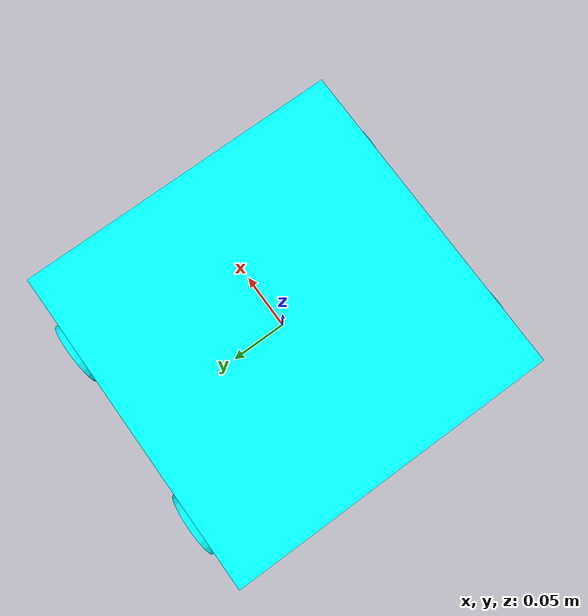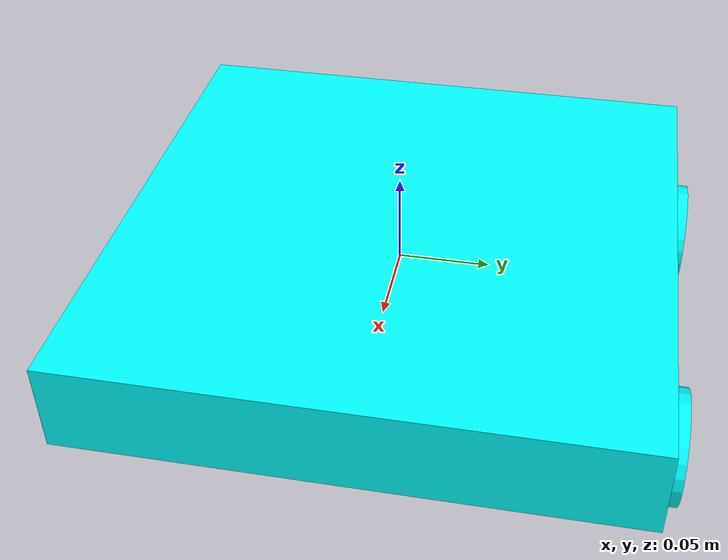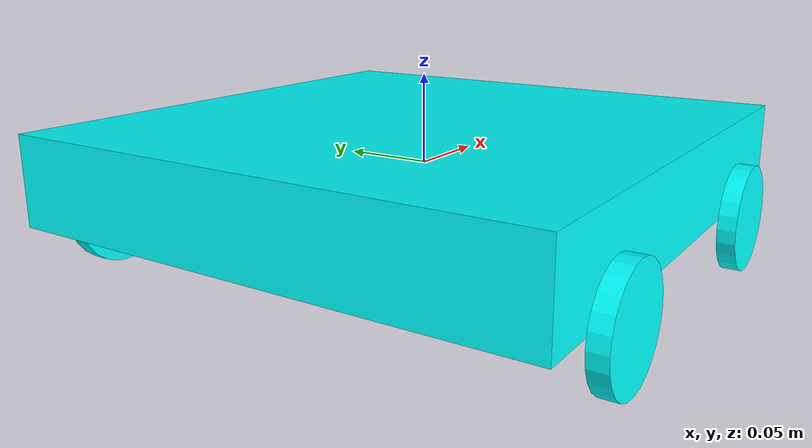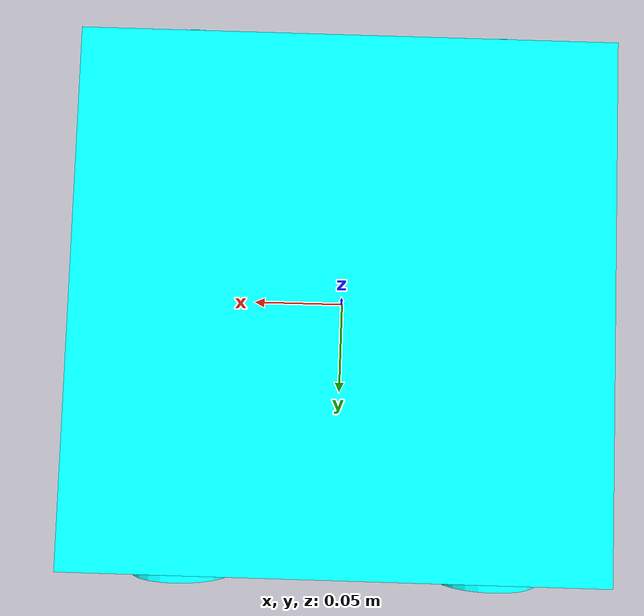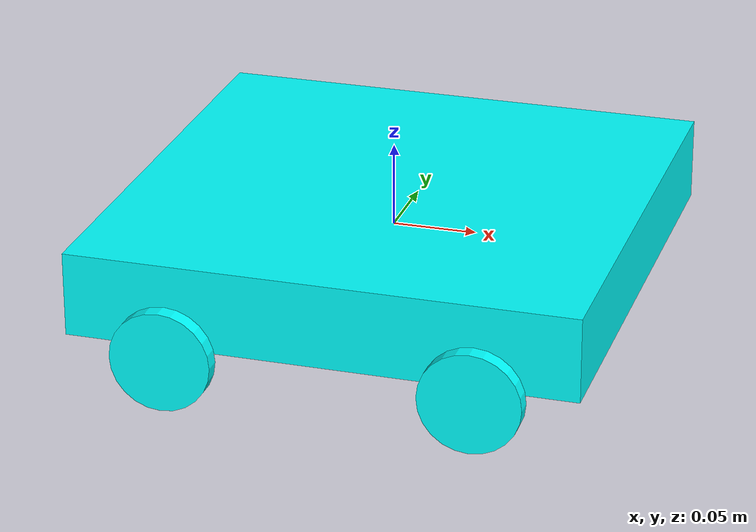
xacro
<?xml version="1.0"?>

<robot name="simple4wd"
  xmlns:xacro="http://www.ros.org/wiki/xacro">

  <!-- Import wheel element -->
  <xacro:include filename="$(find simple_description)/urdf/wheel.urdf.xacro" />

  <gazebo>
    <plugin name="gazebo_ros_control" filename="libgazebo_ros_control.so">
      <robotNamespace>/simple4wd</robotNamespace>
    </plugin>
  </gazebo>

  <!-- Constants -->
  <xacro:property name="BASE_WIDTH" value="0.3"/>
  <xacro:property name="BASE_LENGTH" value="0.3"/>
  <xacro:property name="BASE_HEIGHT" value="0.05"/>
  <xacro:property name="BASE_MASS" value="10"/>

  <xacro:property name="WHEEL_WIDTH" value="0.01"/>
  <xacro:property name="WHEEL_RADIUS" value="0.03"/>
  <xacro:property name="WHEEL_MASS" value="2"/>

  <xacro:property name="PI" value="3.14159"/>

  <!-- Materials -->
  <material name="cyan">
    <color rgba="0 1.0 1.0 1.0"/>
  </material>

  <!-- Robot Base (front is facing positive x) -->
  <link name="base_link">
    <visual>
      <geometry>
        <box size="${BASE_WIDTH} ${BASE_LENGTH} ${BASE_HEIGHT}"/>
      </geometry>
      <material name="cyan"/>
    </visual>

    <collision>
      <geometry>
        <box size="${BASE_WIDTH} ${BASE_LENGTH} ${BASE_HEIGHT}"/>
      </geometry>
    </collision>

    <inertial>
      <mass value="${BASE_MASS}"/>
      <inertia
        ixx="${BASE_MASS / 12.0 * (BASE_LENGTH * BASE_LENGTH + BASE_HEIGHT * BASE_HEIGHT)}" ixy="0" ixz="0"
        iyy="${BASE_MASS / 12.0 * (BASE_WIDTH * BASE_WIDTH + BASE_HEIGHT * BASE_HEIGHT)}" iyz="0"
        izz="${BASE_MASS / 12.0 * (BASE_WIDTH * BASE_WIDTH + BASE_LENGTH * BASE_LENGTH)}"
      />
    </inertial>
  </link>

  <!-- Wheels -->
  <xacro:wheel
    name_link="left_front_wheel" parent_link="base_link"
    mass="${WHEEL_MASS}" radius="${WHEEL_RADIUS}" width="${WHEEL_WIDTH}"
    translate_x="${BASE_WIDTH/2 - 2*WHEEL_RADIUS}"
    translate_y="${BASE_LENGTH/2 + WHEEL_WIDTH/2}"
    translate_z="${-WHEEL_RADIUS}"
  />

  <xacro:wheel
    name_link="right_back_wheel" parent_link="base_link"
    mass="${WHEEL_MASS}" radius="${WHEEL_RADIUS}" width="${WHEEL_WIDTH}"
    translate_x="${-(BASE_WIDTH/2 - 2*WHEEL_RADIUS)}"
    translate_y="${-(BASE_LENGTH/2 + WHEEL_WIDTH/2)}"
    translate_z="${-WHEEL_RADIUS}"
  />

  <xacro:wheel
    name_link="right_front_wheel" parent_link="base_link"
    mass="${WHEEL_MASS}" radius="${WHEEL_RADIUS}" width="${WHEEL_WIDTH}"
    translate_x="${BASE_WIDTH/2 - 2*WHEEL_RADIUS}"
    translate_y="${-(BASE_LENGTH/2 + WHEEL_WIDTH/2)}"
    translate_z="${-WHEEL_RADIUS}"
  />

  <xacro:wheel
    name_link="left_back_wheel" parent_link="base_link"
    mass="${WHEEL_MASS}" radius="${WHEEL_RADIUS}" width="${WHEEL_WIDTH}"
    translate_x="${-(BASE_WIDTH/2 - 2*WHEEL_RADIUS)}"
    translate_y="${BASE_LENGTH/2 + WHEEL_WIDTH/2}"
    translate_z="${-WHEEL_RADIUS}"
  />

</robot>

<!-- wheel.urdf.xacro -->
<!-- Reference: https://github.com/qboticslabs/mastering_ros_robot_description_pkg/blob/master/urdf/wheel.urdf.xacro -->

<robot name="wheel"
  xmlns:xacro="http://www.ros.org/wiki/xacro">

  <xacro:macro name="wheel" params="name_link parent_link mass radius width translate_x translate_y translate_z">
    <link name="${name_link}_link">
      <visual>
        <origin xyz="0 0 0" rpy="${PI/2} 0 0" />
        <geometry>
          <cylinder length="${width}" radius="${radius}" />
        </geometry>
        <material name="cyan"/>
      </visual>

      <collision>
        <origin xyz="0 0 0" rpy="${PI/2} 0 0 " />
        <geometry>
          <cylinder length="${width}" radius="${radius}" />
        </geometry>
      </collision>

      <inertial>
        <mass value="${mass}" />
        <origin xyz="0 0 0" />
        <inertia
          ixx="${mass*(3*radius*radius+width*width)/12}" ixy="0" ixz="0"
          iyy="${mass*(3*radius*radius+width*width)/12}" iyz="0"
          izz="${mass*radius*radius/2}" />
      </inertial>
    </link>

    <joint name="${name_link}_joint" type="continuous">
      <parent link="${parent_link}"/>
      <child link="${name_link}_link"/>
      <origin xyz="${translate_x} ${translate_y} ${translate_z}" rpy="0 0 0" />
      <axis xyz="0 1 0" rpy="0 0 0" />
    </joint>

    <transmission name="${name_link}_trans">
			<type>transmission_interface/SimpleTransmission</type>
			<actuator name="${name_link}_motor">
				<mechanicalReduction>1</mechanicalReduction>
			</actuator>
			<joint name="${name_link}_joint">
				<hardwareInterface>hardware_interface/VelocityJointInterface</hardwareInterface>
			</joint>
		</transmission>

    <gazebo reference="${name_link}_link">
      <material>Gazebo/Grey</material>
			<mu1 value="1"/>
			<mu2 value="1"/>
			<kp value="10000000.0" />
			<kd value="1.0" />
			<fdir1 value="1 0 0"/>
		</gazebo>

  </xacro:macro>

</robot>
